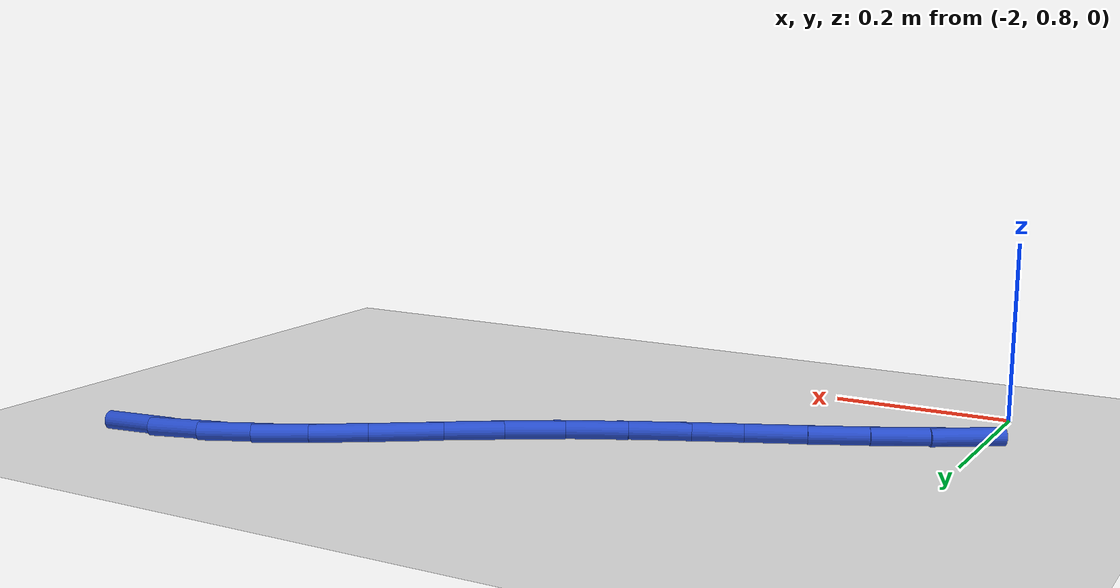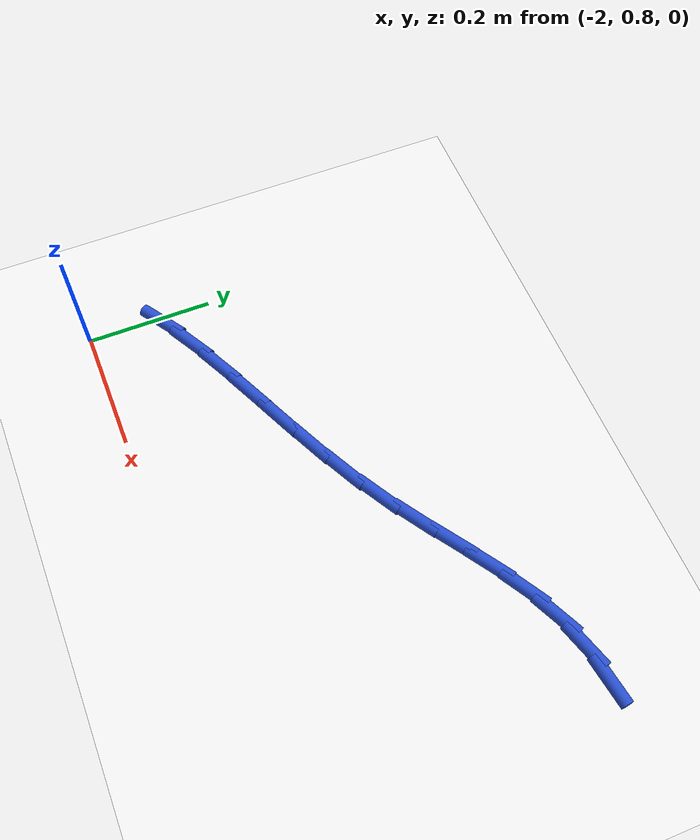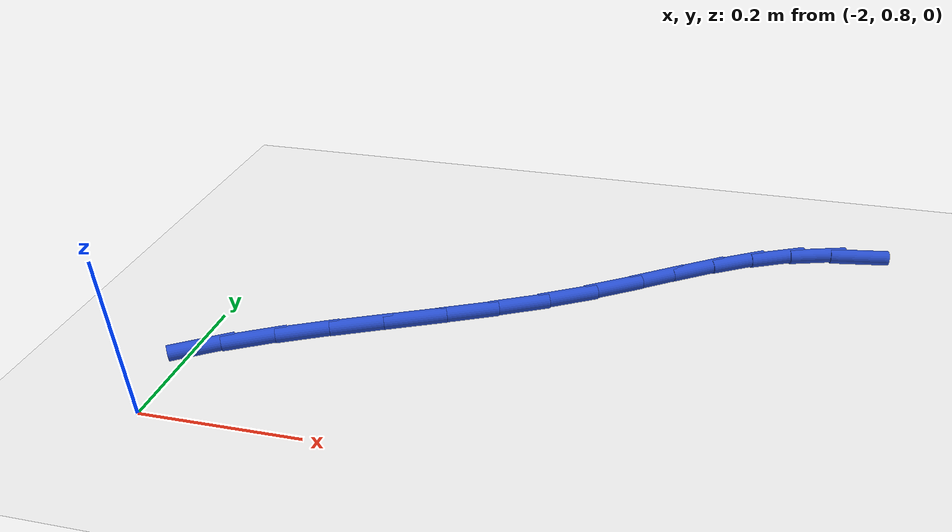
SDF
<sdf version="1.6">
 <world name="default">
  <model name="ground_plane">
   <static>1</static>
   <link name="link">
    <collision name="collision">
     <geometry><plane><normal>0 0 1</normal><size>100 100</size></plane></geometry>
     <surface><friction><ode><mu>100</mu><mu2>50</mu2></ode></friction></surface>
    </collision>
    <visual name="visual">
     <cast_shadows>0</cast_shadows>
     <geometry><plane><normal>0 0 1</normal><size>100 100</size></plane></geometry>
     <material>
      <script><uri>file://media/materials/scripts/gazebo.material</uri><name>Gazebo/WhiteGlow</name></script>
     </material>
    </visual>
   </link>
  </model>
  <model name="line">
   <link name="link_30">
    <pose>-1.1929108600154639 1.314099770216503 0.01 0 1.57 0.14691093978534062</pose>
    <collision name="collision">
     <geometry><cylinder><radius>0.01</radius><length>0.08</length></cylinder></geometry>
    </collision>
    <visual name="visual">
     <material>
      <script><name>Gazebo/Blue</name><uri>file://media/materials/scripts/gazebo.material</uri></script>
     </material>
     <geometry><cylinder><radius>0.01</radius><length>0.08</length></cylinder></geometry>
    </visual>
   </link>
   <link name="link_31">
    <pose>-1.2499182570698582 1.3056639830670174 0.01 0 1.57 0.2969696615047927</pose>
    <collision name="collision">
     <geometry><cylinder><radius>0.01</radius><length>0.08</length></cylinder></geometry>
    </collision>
    <visual name="visual">
     <material>
      <script><name>Gazebo/Blue</name><uri>file://media/materials/scripts/gazebo.material</uri></script>
     </material>
     <geometry><cylinder><radius>0.01</radius><length>0.08</length></cylinder></geometry>
    </visual>
   </link>
   <link name="link_32">
    <pose>-1.304998833642374 1.2888082778638064 0.01 0 1.57 0.436719854007788</pose>
    <collision name="collision">
     <geometry><cylinder><radius>0.01</radius><length>0.08</length></cylinder></geometry>
    </collision>
    <visual name="visual">
     <material>
      <script><name>Gazebo/Blue</name><uri>file://media/materials/scripts/gazebo.material</uri></script>
     </material>
     <geometry><cylinder><radius>0.01</radius><length>0.08</length></cylinder></geometry>
    </visual>
   </link>
   <link name="link_33">
    <pose>-1.3582630789513856 1.2639456172752805 0.01 0 1.57 0.5324602053302612</pose>
    <collision name="collision">
     <geometry><cylinder><radius>0.01</radius><length>0.08</length></cylinder></geometry>
    </collision>
    <visual name="visual">
     <material>
      <script><name>Gazebo/Blue</name><uri>file://media/materials/scripts/gazebo.material</uri></script>
     </material>
     <geometry><cylinder><radius>0.01</radius><length>0.08</length></cylinder></geometry>
    </visual>
   </link>
   <link name="link_34">
    <pose>-1.4105927303792596 1.2331115956966083 0.01 0 1.57 0.5843752741454153</pose>
    <collision name="collision">
     <geometry><cylinder><radius>0.01</radius><length>0.08</length></cylinder></geometry>
    </collision>
    <visual name="visual">
     <material>
      <script><name>Gazebo/Blue</name><uri>file://media/materials/scripts/gazebo.material</uri></script>
     </material>
     <geometry><cylinder><radius>0.01</radius><length>0.08</length></cylinder></geometry>
    </visual>
   </link>
   <link name="link_35">
    <pose>-1.4629388964386003 1.1984877576880273 0.01 0 1.57 0.5969038378681593</pose>
    <collision name="collision">
     <geometry><cylinder><radius>0.01</radius><length>0.08</length></cylinder></geometry>
    </collision>
    <visual name="visual">
     <material>
      <script><name>Gazebo/Blue</name><uri>file://media/materials/scripts/gazebo.material</uri></script>
     </material>
     <geometry><cylinder><radius>0.01</radius><length>0.08</length></cylinder></geometry>
    </visual>
   </link>
   <link name="link_36">
    <pose>-1.5162526856420098 1.162255647809776 0.01 0 1.57 0.5732850760169448</pose>
    <collision name="collision">
     <geometry><cylinder><radius>0.01</radius><length>0.08</length></cylinder></geometry>
    </collision>
    <visual name="visual">
     <material>
      <script><name>Gazebo/Blue</name><uri>file://media/materials/scripts/gazebo.material</uri></script>
     </material>
     <geometry><cylinder><radius>0.01</radius><length>0.08</length></cylinder></geometry>
    </visual>
   </link>
   <link name="link_37">
    <pose>-1.5714852065020934 1.1265968106220927 0.01 0 1.57 0.5189405985460535</pose>
    <collision name="collision">
     <geometry><cylinder><radius>0.01</radius><length>0.08</length></cylinder></geometry>
    </collision>
    <visual name="visual">
     <material>
      <script><name>Gazebo/Blue</name><uri>file://media/materials/scripts/gazebo.material</uri></script>
     </material>
     <geometry><cylinder><radius>0.01</radius><length>0.08</length></cylinder></geometry>
    </visual>
   </link>
   <link name="link_38">
    <pose>-1.6294499936015305 1.0934898758078309 0.01 0 1.57 0.46778137242600715</pose>
    <collision name="collision">
     <geometry><cylinder><radius>0.01</radius><length>0.08</length></cylinder></geometry>
    </collision>
    <visual name="visual">
     <material>
      <script><name>Gazebo/Blue</name><uri>file://media/materials/scripts/gazebo.material</uri></script>
     </material>
     <geometry><cylinder><radius>0.01</radius><length>0.08</length></cylinder></geometry>
    </visual>
   </link>
   <link name="link_39">
    <pose>-1.6896993563656921 1.0630532270839557 0.01 0 1.57 0.4364908320781543</pose>
    <collision name="collision">
     <geometry><cylinder><radius>0.01</radius><length>0.08</length></cylinder></geometry>
    </collision>
    <visual name="visual">
     <material>
      <script><name>Gazebo/Blue</name><uri>file://media/materials/scripts/gazebo.material</uri></script>
     </material>
     <geometry><cylinder><radius>0.01</radius><length>0.08</length></cylinder></geometry>
    </visual>
   </link>
   <link name="link_40">
    <pose>-1.751108123354224 1.0344059967331252 0.01 0 1.57 0.42423143310756073</pose>
    <collision name="collision">
     <geometry><cylinder><radius>0.01</radius><length>0.08</length></cylinder></geometry>
    </collision>
    <visual name="visual">
     <material>
      <script><name>Gazebo/Blue</name><uri>file://media/materials/scripts/gazebo.material</uri></script>
     </material>
     <geometry><cylinder><radius>0.01</radius><length>0.08</length></cylinder></geometry>
    </visual>
   </link>
   <link name="link_41">
    <pose>-1.812544629445939 1.0066577391735627 0.01 0 1.57 0.4309573757480972</pose>
    <collision name="collision">
     <geometry><cylinder><radius>0.01</radius><length>0.08</length></cylinder></geometry>
    </collision>
    <visual name="visual">
     <material>
      <script><name>Gazebo/Blue</name><uri>file://media/materials/scripts/gazebo.material</uri></script>
     </material>
     <geometry><cylinder><radius>0.01</radius><length>0.08</length></cylinder></geometry>
    </visual>
   </link>
   <link name="link_42">
    <pose>-1.8728772095196482 0.9789180088234939 0.01 0 1.57 0.4577526540076905</pose>
    <collision name="collision">
     <geometry><cylinder><radius>0.01</radius><length>0.08</length></cylinder></geometry>
    </collision>
    <visual name="visual">
     <material>
      <script><name>Gazebo/Blue</name><uri>file://media/materials/scripts/gazebo.material</uri></script>
     </material>
     <geometry><cylinder><radius>0.01</radius><length>0.08</length></cylinder></geometry>
    </visual>
   </link>
   <link name="link_43">
    <pose>-1.9309741984541648 0.9502963601011419 0.01 0 1.57 0.5069393992090527</pose>
    <collision name="collision">
     <geometry><cylinder><radius>0.01</radius><length>0.08</length></cylinder></geometry>
    </collision>
    <visual name="visual">
     <material>
      <script><name>Gazebo/Blue</name><uri>file://media/materials/scripts/gazebo.material</uri></script>
     </material>
     <geometry><cylinder><radius>0.01</radius><length>0.08</length></cylinder></geometry>
    </visual>
   </link>
   <link name="link_44">
    <pose>-1.9857039311283002 0.919902347424732 0.01 0 1.57 0.5820473245502673</pose>
    <collision name="collision">
     <geometry><cylinder><radius>0.01</radius><length>0.08</length></cylinder></geometry>
    </collision>
    <visual name="visual">
     <material>
      <script><name>Gazebo/Blue</name><uri>file://media/materials/scripts/gazebo.material</uri></script>
     </material>
     <geometry><cylinder><radius>0.01</radius><length>0.08</length></cylinder></geometry>
    </visual>
   </link>
  </model>
 </world>
</sdf>
